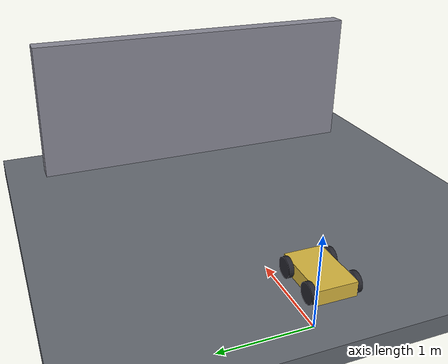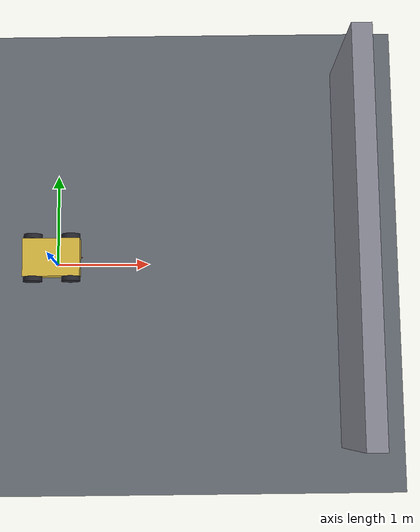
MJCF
<mujoco model="ladder0_rung6_mujoco">

  <!-- Only gravity and the timestep are set from the contract.  Everything
       else is MuJoCo's default, on purpose: this arm is the un-tuned
       reference for the solver OmniSim runs underneath. -->
  <option timestep="0.004" gravity="0 0 -9.81"/>

  <default>
    <!-- sliding / torsional / rolling.  condim defaults to 3, so only the
         first component is in force; the rest are declared for the record. -->
    <geom friction="1.0 0.005 0.0001"/>
  </default>

  <worldbody>
    <!-- Floor slab: full extents 20.0 x 20.0 x 0.2 m centred at z=0.4,
         so its top surface is at z=0.5.  Deliberately NOT at z=0. -->
    <geom name="floor" type="box" size="10.0 10.0 0.1" pos="0 0 0.4"
          rgba="0.4 0.42 0.45 1"/>

    <!-- wall: near face at x=3.0, so a ray from x_s reads 3.0-x_s. -->
    <geom name="wall" type="box" size="0.1 2.0 0.8"
          pos="3.1 0 1.3" rgba="0.55 0.55 0.6 1"/>

    <body name="chassis" pos="0 0.0 0.6">
      <freejoint name="chassis_free"/>
      <geom name="chassis_geom" type="box" size="0.3 0.2 0.075"
            mass="5.0" rgba="0.85 0.72 0.25 1"/>
      <site name="range_site" pos="0.32 0 0.0" zaxis="1 0 0"
            size="0.005" rgba="0.9 0.2 0.2 1"/>

      <body name="fl" pos="0.2 0.225 0">
        <joint name="fl_joint" type="hinge" axis="0 1 0"/>
        <geom name="fl_geom" type="cylinder"
              fromto="0 -0.025 0  0 0.025 0" size="0.1" mass="0.5"
              rgba="0.15 0.15 0.18 1"/>
      </body>

      <body name="fr" pos="0.2 -0.225 0">
        <joint name="fr_joint" type="hinge" axis="0 1 0"/>
        <geom name="fr_geom" type="cylinder"
              fromto="0 -0.025 0  0 0.025 0" size="0.1" mass="0.5"
              rgba="0.15 0.15 0.18 1"/>
      </body>

      <body name="rl" pos="-0.2 0.225 0">
        <joint name="rl_joint" type="hinge" axis="0 1 0"/>
        <geom name="rl_geom" type="cylinder"
              fromto="0 -0.025 0  0 0.025 0" size="0.1" mass="0.5"
              rgba="0.15 0.15 0.18 1"/>
      </body>

      <body name="rr" pos="-0.2 -0.225 0">
        <joint name="rr_joint" type="hinge" axis="0 1 0"/>
        <geom name="rr_geom" type="cylinder"
              fromto="0 -0.025 0  0 0.025 0" size="0.1" mass="0.5"
              rgba="0.15 0.15 0.18 1"/>
      </body>
    </body>
  </worldbody>

  <sensor>
    <rangefinder name="range" site="range_site" cutoff="5.0"/>
  </sensor>

  <actuator>
    <!-- Deadbeat velocity servo: kv = I/dt = 0.625000, half the
         explicit-Euler stability bound 2I/dt, for a wheel's
         own I = m r^2 / 2 = 0.002500 kg m^2. -->
    <velocity name="fl_motor" joint="fl_joint" kv="0.625000"/>
    <velocity name="fr_motor" joint="fr_joint" kv="0.625000"/>
    <velocity name="rl_motor" joint="rl_joint" kv="0.625000"/>
    <velocity name="rr_motor" joint="rr_joint" kv="0.625000"/>
  </actuator>

</mujoco>
